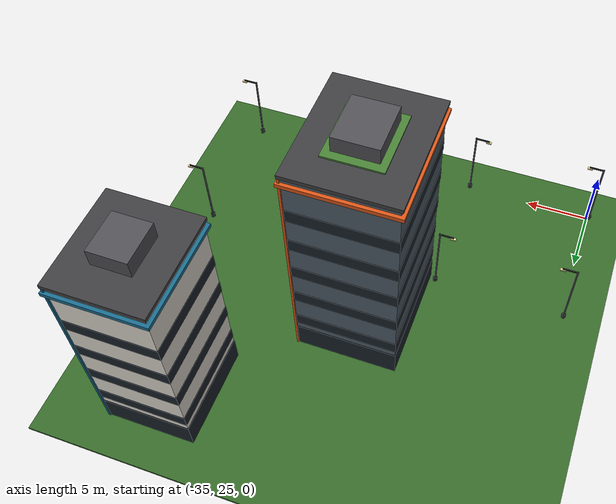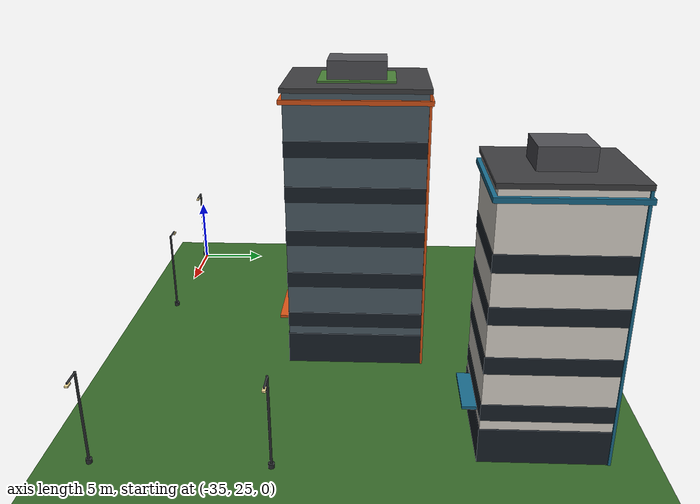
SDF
<sdf version="1.9">
 <world name="city">
  <model name="ground">
   <static>true</static>
   <link name="link">
    <collision name="collision">
     <pose>0 0 -0.1 0 0 0</pose>
     <geometry><box><size>220 220 0.2</size></box></geometry>
     <surface><friction><ode><mu>1.0</mu><mu2>1.0</mu2></ode></friction></surface>
    </collision>
    <visual name="visual">
     <pose>0 0 -0.1 0 0 0</pose>
     <geometry><box><size>220 220 0.2</size></box></geometry>
     <material>
      <ambient>0.17 0.33 0.13 1</ambient>
      <diffuse>0.21 0.41 0.16 1</diffuse>
      <specular>0.05 0.06 0.04 1</specular>
     </material>
    </visual>
   </link>
  </model>
  <model name="building_8">
   <static>true</static>
   <pose>-20.5 39.5 0 0 0 0</pose>
   <link name="link">
    <collision name="collision">
     <pose>0 0 9.414 0 0 0</pose>
     <geometry><box><size>7.629 9.096 18.829</size></box></geometry>
    </collision>
    <visual name="body">
     <pose>0 0 9.414 0 0 0</pose>
     <geometry><box><size>7.629 9.096 18.829</size></box></geometry>
     <material>
      <ambient>0.3 0.36 0.4 1</ambient>
      <diffuse>0.3 0.36 0.4 1</diffuse>
      <specular>0.16 0.16 0.18 1</specular>
      <pbr><metal><roughness>0.62</roughness><metalness>0.08</metalness></metal></pbr>
     </material>
    </visual>
    <visual name="podium">
     <pose>0 0 1.1 0 0 0</pose>
     <geometry><box><size>7.729 9.196 2.2</size></box></geometry>
     <material>
      <ambient>0.07 0.09 0.11 1</ambient>
      <diffuse>0.1 0.13 0.16 1</diffuse>
      <specular>0.45 0.47 0.5 1</specular>
      <pbr><metal><roughness>0.22</roughness><metalness>0.4</metalness></metal></pbr>
     </material>
    </visual>
    <visual name="canopy">
     <pose>0 -4.948 2.55 0 0 0</pose>
     <geometry><box><size>4.196 0.90 0.18</size></box></geometry>
     <material>
      <ambient>0.85 0.33 0.09 1</ambient>
      <diffuse>0.85 0.33 0.09 1</diffuse>
      <specular>0.25 0.25 0.25 1</specular>
      <pbr><metal><roughness>0.45</roughness><metalness>0</metalness></metal></pbr>
     </material>
    </visual>
    <visual name="corner_column">
     <pose>3.854 4.588 9.414 0 0 0</pose>
     <geometry><box><size>0.16 0.16 18.829</size></box></geometry>
     <material>
      <ambient>0.85 0.33 0.09 1</ambient>
      <diffuse>0.85 0.33 0.09 1</diffuse>
      <specular>0.25 0.25 0.25 1</specular>
      <pbr><metal><roughness>0.45</roughness><metalness>0</metalness></metal></pbr>
     </material>
    </visual>
    <visual name="glass_0">
     <pose>0 0 3.3 0 0 0</pose>
     <geometry><box><size>7.689 9.156 1.05</size></box></geometry>
     <material>
      <ambient>0.075 0.095 0.115 1</ambient>
      <diffuse>0.1 0.13 0.16 1</diffuse>
      <specular>0.55 0.6 0.65 1</specular>
      <emissive>0.06 0.09 0.12 1</emissive>
      <pbr><metal><roughness>0.1</roughness><metalness>0.55</metalness></metal></pbr>
     </material>
    </visual>
    <visual name="glass_1">
     <pose>0 0 6.3 0 0 0</pose>
     <geometry><box><size>7.689 9.156 1.05</size></box></geometry>
     <material>
      <ambient>0.075 0.095 0.115 1</ambient>
      <diffuse>0.1 0.13 0.16 1</diffuse>
      <specular>0.55 0.6 0.65 1</specular>
      <emissive>0.06 0.09 0.12 1</emissive>
      <pbr><metal><roughness>0.1</roughness><metalness>0.55</metalness></metal></pbr>
     </material>
    </visual>
    <visual name="glass_2">
     <pose>0 0 9.3 0 0 0</pose>
     <geometry><box><size>7.689 9.156 1.05</size></box></geometry>
     <material>
      <ambient>0.075 0.095 0.115 1</ambient>
      <diffuse>0.1 0.13 0.16 1</diffuse>
      <specular>0.55 0.6 0.65 1</specular>
      <emissive>0.06 0.09 0.12 1</emissive>
      <pbr><metal><roughness>0.1</roughness><metalness>0.55</metalness></metal></pbr>
     </material>
    </visual>
    <visual name="glass_3">
     <pose>0 0 12.3 0 0 0</pose>
     <geometry><box><size>7.689 9.156 1.05</size></box></geometry>
     <material>
      <ambient>0.075 0.095 0.115 1</ambient>
      <diffuse>0.1 0.13 0.16 1</diffuse>
      <specular>0.55 0.6 0.65 1</specular>
      <emissive>0.06 0.09 0.12 1</emissive>
      <pbr><metal><roughness>0.1</roughness><metalness>0.55</metalness></metal></pbr>
     </material>
    </visual>
    <visual name="glass_4">
     <pose>0 0 15.3 0 0 0</pose>
     <geometry><box><size>7.689 9.156 1.05</size></box></geometry>
     <material>
      <ambient>0.075 0.095 0.115 1</ambient>
      <diffuse>0.1 0.13 0.16 1</diffuse>
      <specular>0.55 0.6 0.65 1</specular>
      <emissive>0.06 0.09 0.12 1</emissive>
      <pbr><metal><roughness>0.1</roughness><metalness>0.55</metalness></metal></pbr>
     </material>
    </visual>
    <visual name="cornice">
     <pose>0 0 18.279 0 0 0</pose>
     <geometry><box><size>8.129 9.596 0.30</size></box></geometry>
     <material>
      <ambient>0.85 0.33 0.09 1</ambient>
      <diffuse>0.85 0.33 0.09 1</diffuse>
      <specular>0.2 0.2 0.2 1</specular>
      <pbr><metal><roughness>0.55</roughness><metalness>0</metalness></metal></pbr>
     </material>
    </visual>
    <visual name="roof">
     <pose>0 0 18.979 0 0 0</pose>
     <geometry><box><size>7.929 9.396 0.30</size></box></geometry>
     <material>
      <ambient>0.24 0.24 0.25 1</ambient>
      <diffuse>0.24 0.24 0.25 1</diffuse>
      <specular>0.18 0.18 0.18 1</specular>
      <pbr><metal><roughness>0.85</roughness><metalness>0</metalness></metal></pbr>
     </material>
    </visual>
    <visual name="roof_garden">
     <pose>0 0 19.169 0 0 0</pose>
     <geometry><box><size>4.196 5.003 0.16</size></box></geometry>
     <material>
      <ambient>0.24 0.44 0.18 1</ambient>
      <diffuse>0.28 0.5 0.21 1</diffuse>
      <specular>0.05 0.06 0.04 1</specular>
     </material>
    </visual>
    <visual name="roof_unit">
     <pose>0 0 19.779 0 0 0</pose>
     <geometry><box><size>3.204 3.82 1.30</size></box></geometry>
     <material>
      <ambient>0.31 0.31 0.33 1</ambient>
      <diffuse>0.31 0.31 0.33 1</diffuse>
      <specular>0.18 0.18 0.18 1</specular>
      <pbr><metal><roughness>0.55</roughness><metalness>0.3</metalness></metal></pbr>
     </material>
    </visual>
   </link>
  </model>
  <model name="building_9">
   <static>true</static>
   <pose>-9.5 50.5 0 0 0 0</pose>
   <link name="link">
    <collision name="collision">
     <pose>0 0 8.161 0 0 0</pose>
     <geometry><box><size>6.554 7.377 16.322</size></box></geometry>
    </collision>
    <visual name="body">
     <pose>0 0 8.161 0 0 0</pose>
     <geometry><box><size>6.554 7.377 16.322</size></box></geometry>
     <material>
      <ambient>0.88 0.86 0.82 1</ambient>
      <diffuse>0.88 0.86 0.82 1</diffuse>
      <specular>0.16 0.16 0.18 1</specular>
      <pbr><metal><roughness>0.62</roughness><metalness>0.08</metalness></metal></pbr>
     </material>
    </visual>
    <visual name="podium">
     <pose>0 0 1.1 0 0 0</pose>
     <geometry><box><size>6.654 7.477 2.2</size></box></geometry>
     <material>
      <ambient>0.07 0.09 0.11 1</ambient>
      <diffuse>0.1 0.13 0.16 1</diffuse>
      <specular>0.45 0.47 0.5 1</specular>
      <pbr><metal><roughness>0.22</roughness><metalness>0.4</metalness></metal></pbr>
     </material>
    </visual>
    <visual name="canopy">
     <pose>0 -4.089 2.55 0 0 0</pose>
     <geometry><box><size>3.604 0.90 0.18</size></box></geometry>
     <material>
      <ambient>0.1 0.42 0.55 1</ambient>
      <diffuse>0.1 0.42 0.55 1</diffuse>
      <specular>0.25 0.25 0.25 1</specular>
      <pbr><metal><roughness>0.45</roughness><metalness>0</metalness></metal></pbr>
     </material>
    </visual>
    <visual name="corner_column">
     <pose>3.317 3.729 8.161 0 0 0</pose>
     <geometry><box><size>0.16 0.16 16.322</size></box></geometry>
     <material>
      <ambient>0.1 0.42 0.55 1</ambient>
      <diffuse>0.1 0.42 0.55 1</diffuse>
      <specular>0.25 0.25 0.25 1</specular>
      <pbr><metal><roughness>0.45</roughness><metalness>0</metalness></metal></pbr>
     </material>
    </visual>
    <visual name="glass_0">
     <pose>0 0 3.3 0 0 0</pose>
     <geometry><box><size>6.614 7.437 1.05</size></box></geometry>
     <material>
      <ambient>0.075 0.095 0.115 1</ambient>
      <diffuse>0.1 0.13 0.16 1</diffuse>
      <specular>0.55 0.6 0.65 1</specular>
      <emissive>0.46 0.3 0.12 1</emissive>
      <pbr><metal><roughness>0.1</roughness><metalness>0.55</metalness></metal></pbr>
     </material>
    </visual>
    <visual name="glass_1">
     <pose>0 0 6.3 0 0 0</pose>
     <geometry><box><size>6.614 7.437 1.05</size></box></geometry>
     <material>
      <ambient>0.075 0.095 0.115 1</ambient>
      <diffuse>0.1 0.13 0.16 1</diffuse>
      <specular>0.55 0.6 0.65 1</specular>
      <emissive>0.06 0.09 0.12 1</emissive>
      <pbr><metal><roughness>0.1</roughness><metalness>0.55</metalness></metal></pbr>
     </material>
    </visual>
    <visual name="glass_2">
     <pose>0 0 9.3 0 0 0</pose>
     <geometry><box><size>6.614 7.437 1.05</size></box></geometry>
     <material>
      <ambient>0.075 0.095 0.115 1</ambient>
      <diffuse>0.1 0.13 0.16 1</diffuse>
      <specular>0.55 0.6 0.65 1</specular>
      <emissive>0.46 0.3 0.12 1</emissive>
      <pbr><metal><roughness>0.1</roughness><metalness>0.55</metalness></metal></pbr>
     </material>
    </visual>
    <visual name="glass_3">
     <pose>0 0 12.3 0 0 0</pose>
     <geometry><box><size>6.614 7.437 1.05</size></box></geometry>
     <material>
      <ambient>0.075 0.095 0.115 1</ambient>
      <diffuse>0.1 0.13 0.16 1</diffuse>
      <specular>0.55 0.6 0.65 1</specular>
      <emissive>0.06 0.09 0.12 1</emissive>
      <pbr><metal><roughness>0.1</roughness><metalness>0.55</metalness></metal></pbr>
     </material>
    </visual>
    <visual name="cornice">
     <pose>0 0 15.772 0 0 0</pose>
     <geometry><box><size>7.054 7.877 0.30</size></box></geometry>
     <material>
      <ambient>0.1 0.42 0.55 1</ambient>
      <diffuse>0.1 0.42 0.55 1</diffuse>
      <specular>0.2 0.2 0.2 1</specular>
      <pbr><metal><roughness>0.55</roughness><metalness>0</metalness></metal></pbr>
     </material>
    </visual>
    <visual name="roof">
     <pose>0 0 16.472 0 0 0</pose>
     <geometry><box><size>6.854 7.677 0.30</size></box></geometry>
     <material>
      <ambient>0.24 0.24 0.25 1</ambient>
      <diffuse>0.24 0.24 0.25 1</diffuse>
      <specular>0.18 0.18 0.18 1</specular>
      <pbr><metal><roughness>0.85</roughness><metalness>0</metalness></metal></pbr>
     </material>
    </visual>
    <visual name="roof_unit">
     <pose>0 0 17.272 0 0 0</pose>
     <geometry><box><size>2.753 3.098 1.30</size></box></geometry>
     <material>
      <ambient>0.31 0.31 0.33 1</ambient>
      <diffuse>0.31 0.31 0.33 1</diffuse>
      <specular>0.18 0.18 0.18 1</specular>
      <pbr><metal><roughness>0.55</roughness><metalness>0.3</metalness></metal></pbr>
     </material>
    </visual>
   </link>
  </model>
  <model name="streetlight_8">
   <static>true</static>
   <pose>-35.2 24.8 0 0 0 0</pose>
   <link name="link">
    <visual name="foundation">
     <pose>0 0 0.15 0 0 0</pose>
     <geometry><cylinder><radius>0.18</radius><length>0.3</length></cylinder></geometry>
     <material>
      <ambient>0.17 0.18 0.19 1</ambient>
      <diffuse>0.17 0.18 0.19 1</diffuse>
      <specular>0.3 0.3 0.32 1</specular>
      <pbr><metal><roughness>0.45</roughness><metalness>0.35</metalness></metal></pbr>
     </material>
    </visual>
    <visual name="pole">
     <pose>0 0 3.0 0 0 0</pose>
     <geometry><cylinder><radius>0.075</radius><length>6</length></cylinder></geometry>
     <material>
      <ambient>0.17 0.18 0.19 1</ambient>
      <diffuse>0.17 0.18 0.19 1</diffuse>
      <specular>0.3 0.3 0.32 1</specular>
      <pbr><metal><roughness>0.45</roughness><metalness>0.35</metalness></metal></pbr>
     </material>
    </visual>
    <visual name="arm">
     <pose>0.55 0 5.95 0 0 0</pose>
     <geometry><box><size>1.10 0.09 0.09</size></box></geometry>
     <material>
      <ambient>0.17 0.18 0.19 1</ambient>
      <diffuse>0.17 0.18 0.19 1</diffuse>
      <specular>0.3 0.3 0.32 1</specular>
      <pbr><metal><roughness>0.45</roughness><metalness>0.35</metalness></metal></pbr>
     </material>
    </visual>
    <visual name="head">
     <pose>1.05 0 5.83 0 0 0</pose>
     <geometry><box><size>0.42 0.20 0.10</size></box></geometry>
     <material>
      <ambient>1 0.9 0.62 1</ambient>
      <diffuse>1 0.9 0.62 1</diffuse>
      <specular>0.4 0.4 0.4 1</specular>
      <emissive>1 0.78 0.42 1</emissive>
     </material>
    </visual>
   </link>
  </model>
  <model name="streetlight_9">
   <static>true</static>
   <pose>-35.2 35.2 0 0 0 0</pose>
   <link name="link">
    <visual name="foundation">
     <pose>0 0 0.15 0 0 0</pose>
     <geometry><cylinder><radius>0.18</radius><length>0.3</length></cylinder></geometry>
     <material>
      <ambient>0.17 0.18 0.19 1</ambient>
      <diffuse>0.17 0.18 0.19 1</diffuse>
      <specular>0.3 0.3 0.32 1</specular>
      <pbr><metal><roughness>0.45</roughness><metalness>0.35</metalness></metal></pbr>
     </material>
    </visual>
    <visual name="pole">
     <pose>0 0 3.0 0 0 0</pose>
     <geometry><cylinder><radius>0.075</radius><length>6</length></cylinder></geometry>
     <material>
      <ambient>0.17 0.18 0.19 1</ambient>
      <diffuse>0.17 0.18 0.19 1</diffuse>
      <specular>0.3 0.3 0.32 1</specular>
      <pbr><metal><roughness>0.45</roughness><metalness>0.35</metalness></metal></pbr>
     </material>
    </visual>
    <visual name="arm">
     <pose>0.55 0 5.95 0 0 0</pose>
     <geometry><box><size>1.10 0.09 0.09</size></box></geometry>
     <material>
      <ambient>0.17 0.18 0.19 1</ambient>
      <diffuse>0.17 0.18 0.19 1</diffuse>
      <specular>0.3 0.3 0.32 1</specular>
      <pbr><metal><roughness>0.45</roughness><metalness>0.35</metalness></metal></pbr>
     </material>
    </visual>
    <visual name="head">
     <pose>1.05 0 5.83 0 0 0</pose>
     <geometry><box><size>0.42 0.20 0.10</size></box></geometry>
     <material>
      <ambient>1 0.9 0.62 1</ambient>
      <diffuse>1 0.9 0.62 1</diffuse>
      <specular>0.4 0.4 0.4 1</specular>
      <emissive>1 0.78 0.42 1</emissive>
     </material>
    </visual>
   </link>
  </model>
  <model name="streetlight_10">
   <static>true</static>
   <pose>-24.8 24.8 0 0 0 3.142</pose>
   <link name="link">
    <visual name="foundation">
     <pose>0 0 0.15 0 0 0</pose>
     <geometry><cylinder><radius>0.18</radius><length>0.3</length></cylinder></geometry>
     <material>
      <ambient>0.17 0.18 0.19 1</ambient>
      <diffuse>0.17 0.18 0.19 1</diffuse>
      <specular>0.3 0.3 0.32 1</specular>
      <pbr><metal><roughness>0.45</roughness><metalness>0.35</metalness></metal></pbr>
     </material>
    </visual>
    <visual name="pole">
     <pose>0 0 3.0 0 0 0</pose>
     <geometry><cylinder><radius>0.075</radius><length>6</length></cylinder></geometry>
     <material>
      <ambient>0.17 0.18 0.19 1</ambient>
      <diffuse>0.17 0.18 0.19 1</diffuse>
      <specular>0.3 0.3 0.32 1</specular>
      <pbr><metal><roughness>0.45</roughness><metalness>0.35</metalness></metal></pbr>
     </material>
    </visual>
    <visual name="arm">
     <pose>0.55 0 5.95 0 0 0</pose>
     <geometry><box><size>1.10 0.09 0.09</size></box></geometry>
     <material>
      <ambient>0.17 0.18 0.19 1</ambient>
      <diffuse>0.17 0.18 0.19 1</diffuse>
      <specular>0.3 0.3 0.32 1</specular>
      <pbr><metal><roughness>0.45</roughness><metalness>0.35</metalness></metal></pbr>
     </material>
    </visual>
    <visual name="head">
     <pose>1.05 0 5.83 0 0 0</pose>
     <geometry><box><size>0.42 0.20 0.10</size></box></geometry>
     <material>
      <ambient>1 0.9 0.62 1</ambient>
      <diffuse>1 0.9 0.62 1</diffuse>
      <specular>0.4 0.4 0.4 1</specular>
      <emissive>1 0.78 0.42 1</emissive>
     </material>
    </visual>
   </link>
  </model>
  <model name="streetlight_11">
   <static>true</static>
   <pose>-24.8 35.2 0 0 0 3.142</pose>
   <link name="link">
    <visual name="foundation">
     <pose>0 0 0.15 0 0 0</pose>
     <geometry><cylinder><radius>0.18</radius><length>0.3</length></cylinder></geometry>
     <material>
      <ambient>0.17 0.18 0.19 1</ambient>
      <diffuse>0.17 0.18 0.19 1</diffuse>
      <specular>0.3 0.3 0.32 1</specular>
      <pbr><metal><roughness>0.45</roughness><metalness>0.35</metalness></metal></pbr>
     </material>
    </visual>
    <visual name="pole">
     <pose>0 0 3.0 0 0 0</pose>
     <geometry><cylinder><radius>0.075</radius><length>6</length></cylinder></geometry>
     <material>
      <ambient>0.17 0.18 0.19 1</ambient>
      <diffuse>0.17 0.18 0.19 1</diffuse>
      <specular>0.3 0.3 0.32 1</specular>
      <pbr><metal><roughness>0.45</roughness><metalness>0.35</metalness></metal></pbr>
     </material>
    </visual>
    <visual name="arm">
     <pose>0.55 0 5.95 0 0 0</pose>
     <geometry><box><size>1.10 0.09 0.09</size></box></geometry>
     <material>
      <ambient>0.17 0.18 0.19 1</ambient>
      <diffuse>0.17 0.18 0.19 1</diffuse>
      <specular>0.3 0.3 0.32 1</specular>
      <pbr><metal><roughness>0.45</roughness><metalness>0.35</metalness></metal></pbr>
     </material>
    </visual>
    <visual name="head">
     <pose>1.05 0 5.83 0 0 0</pose>
     <geometry><box><size>0.42 0.20 0.10</size></box></geometry>
     <material>
      <ambient>1 0.9 0.62 1</ambient>
      <diffuse>1 0.9 0.62 1</diffuse>
      <specular>0.4 0.4 0.4 1</specular>
      <emissive>1 0.78 0.42 1</emissive>
     </material>
    </visual>
   </link>
  </model>
  <model name="streetlight_20">
   <static>true</static>
   <pose>-5.2 24.8 0 0 0 0</pose>
   <link name="link">
    <visual name="foundation">
     <pose>0 0 0.15 0 0 0</pose>
     <geometry><cylinder><radius>0.18</radius><length>0.3</length></cylinder></geometry>
     <material>
      <ambient>0.17 0.18 0.19 1</ambient>
      <diffuse>0.17 0.18 0.19 1</diffuse>
      <specular>0.3 0.3 0.32 1</specular>
      <pbr><metal><roughness>0.45</roughness><metalness>0.35</metalness></metal></pbr>
     </material>
    </visual>
    <visual name="pole">
     <pose>0 0 3.0 0 0 0</pose>
     <geometry><cylinder><radius>0.075</radius><length>6</length></cylinder></geometry>
     <material>
      <ambient>0.17 0.18 0.19 1</ambient>
      <diffuse>0.17 0.18 0.19 1</diffuse>
      <specular>0.3 0.3 0.32 1</specular>
      <pbr><metal><roughness>0.45</roughness><metalness>0.35</metalness></metal></pbr>
     </material>
    </visual>
    <visual name="arm">
     <pose>0.55 0 5.95 0 0 0</pose>
     <geometry><box><size>1.10 0.09 0.09</size></box></geometry>
     <material>
      <ambient>0.17 0.18 0.19 1</ambient>
      <diffuse>0.17 0.18 0.19 1</diffuse>
      <specular>0.3 0.3 0.32 1</specular>
      <pbr><metal><roughness>0.45</roughness><metalness>0.35</metalness></metal></pbr>
     </material>
    </visual>
    <visual name="head">
     <pose>1.05 0 5.83 0 0 0</pose>
     <geometry><box><size>0.42 0.20 0.10</size></box></geometry>
     <material>
      <ambient>1 0.9 0.62 1</ambient>
      <diffuse>1 0.9 0.62 1</diffuse>
      <specular>0.4 0.4 0.4 1</specular>
      <emissive>1 0.78 0.42 1</emissive>
     </material>
    </visual>
   </link>
  </model>
  <model name="streetlight_21">
   <static>true</static>
   <pose>-5.2 35.2 0 0 0 0</pose>
   <link name="link">
    <visual name="foundation">
     <pose>0 0 0.15 0 0 0</pose>
     <geometry><cylinder><radius>0.18</radius><length>0.3</length></cylinder></geometry>
     <material>
      <ambient>0.17 0.18 0.19 1</ambient>
      <diffuse>0.17 0.18 0.19 1</diffuse>
      <specular>0.3 0.3 0.32 1</specular>
      <pbr><metal><roughness>0.45</roughness><metalness>0.35</metalness></metal></pbr>
     </material>
    </visual>
    <visual name="pole">
     <pose>0 0 3.0 0 0 0</pose>
     <geometry><cylinder><radius>0.075</radius><length>6</length></cylinder></geometry>
     <material>
      <ambient>0.17 0.18 0.19 1</ambient>
      <diffuse>0.17 0.18 0.19 1</diffuse>
      <specular>0.3 0.3 0.32 1</specular>
      <pbr><metal><roughness>0.45</roughness><metalness>0.35</metalness></metal></pbr>
     </material>
    </visual>
    <visual name="arm">
     <pose>0.55 0 5.95 0 0 0</pose>
     <geometry><box><size>1.10 0.09 0.09</size></box></geometry>
     <material>
      <ambient>0.17 0.18 0.19 1</ambient>
      <diffuse>0.17 0.18 0.19 1</diffuse>
      <specular>0.3 0.3 0.32 1</specular>
      <pbr><metal><roughness>0.45</roughness><metalness>0.35</metalness></metal></pbr>
     </material>
    </visual>
    <visual name="head">
     <pose>1.05 0 5.83 0 0 0</pose>
     <geometry><box><size>0.42 0.20 0.10</size></box></geometry>
     <material>
      <ambient>1 0.9 0.62 1</ambient>
      <diffuse>1 0.9 0.62 1</diffuse>
      <specular>0.4 0.4 0.4 1</specular>
      <emissive>1 0.78 0.42 1</emissive>
     </material>
    </visual>
   </link>
  </model>
 </world>
</sdf>
